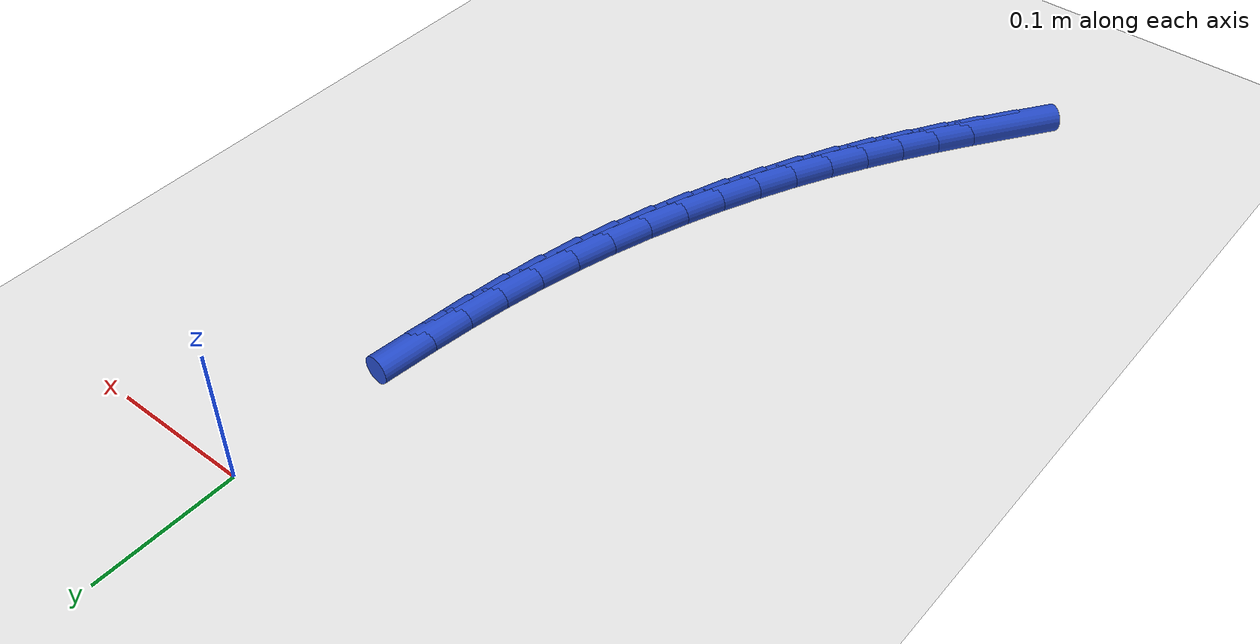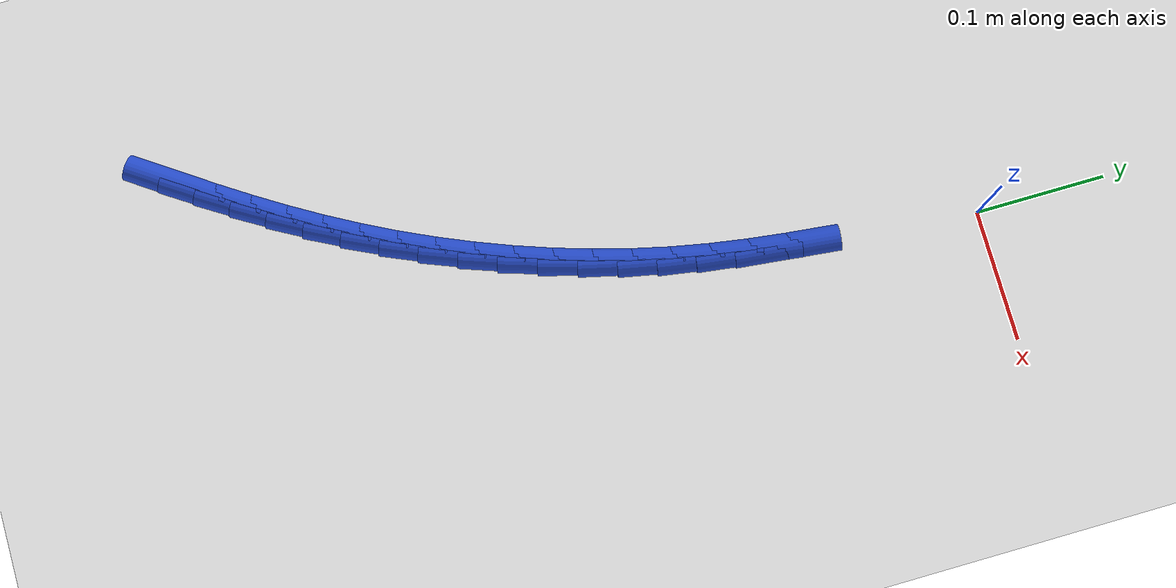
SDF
<sdf version="1.6">
 <world name="default">
  <model name="ground_plane">
   <static>1</static>
   <link name="link">
    <collision name="collision">
     <geometry><plane><normal>0 0 1</normal><size>100 100</size></plane></geometry>
     <surface><friction><ode><mu>100</mu><mu2>50</mu2></ode></friction></surface>
    </collision>
    <visual name="visual">
     <cast_shadows>0</cast_shadows>
     <geometry><plane><normal>0 0 1</normal><size>100 100</size></plane></geometry>
     <material>
      <script><uri>file://media/materials/scripts/gazebo.material</uri><name>Gazebo/WhiteGlow</name></script>
     </material>
    </visual>
   </link>
  </model>
  <model name="line">
   <link name="link_259">
    <pose>-0.18381860467356748 -0.5721646393089822 0.01 0 1.57 0.9653165247589947</pose>
    <collision name="collision">
     <geometry><cylinder><radius>0.01</radius><length>0.08</length></cylinder></geometry>
    </collision>
    <visual name="visual">
     <material>
      <script><name>Gazebo/Blue</name><uri>file://media/materials/scripts/gazebo.material</uri></script>
     </material>
     <geometry><cylinder><radius>0.01</radius><length>0.08</length></cylinder></geometry>
    </visual>
   </link>
   <link name="link_260">
    <pose>-0.16773156931763042 -0.5489245896957048 0.01 0 1.57 0.9844156708058027</pose>
    <collision name="collision">
     <geometry><cylinder><radius>0.01</radius><length>0.08</length></cylinder></geometry>
    </collision>
    <visual name="visual">
     <material>
      <script><name>Gazebo/Blue</name><uri>file://media/materials/scripts/gazebo.material</uri></script>
     </material>
     <geometry><cylinder><radius>0.01</radius><length>0.08</length></cylinder></geometry>
    </visual>
   </link>
   <link name="link_261">
    <pose>-0.15211099513407517 -0.5254111863350731 0.01 0 1.57 1.0071024502967925</pose>
    <collision name="collision">
     <geometry><cylinder><radius>0.01</radius><length>0.08</length></cylinder></geometry>
    </collision>
    <visual name="visual">
     <material>
      <script><name>Gazebo/Blue</name><uri>file://media/materials/scripts/gazebo.material</uri></script>
     </material>
     <geometry><cylinder><radius>0.01</radius><length>0.08</length></cylinder></geometry>
    </visual>
   </link>
   <link name="link_262">
    <pose>-0.13701281345431068 -0.5015257142048131 0.01 0 1.57 1.0332162777126395</pose>
    <collision name="collision">
     <geometry><cylinder><radius>0.01</radius><length>0.08</length></cylinder></geometry>
    </collision>
    <visual name="visual">
     <material>
      <script><name>Gazebo/Blue</name><uri>file://media/materials/scripts/gazebo.material</uri></script>
     </material>
     <geometry><cylinder><radius>0.01</radius><length>0.08</length></cylinder></geometry>
    </visual>
   </link>
   <link name="link_263">
    <pose>-0.12249295560974412 -0.4771694582826482 0.01 0 1.57 1.0625347964919993</pose>
    <collision name="collision">
     <geometry><cylinder><radius>0.01</radius><length>0.08</length></cylinder></geometry>
    </collision>
    <visual name="visual">
     <material>
      <script><name>Gazebo/Blue</name><uri>file://media/materials/scripts/gazebo.material</uri></script>
     </material>
     <geometry><cylinder><radius>0.01</radius><length>0.08</length></cylinder></geometry>
    </visual>
   </link>
   <link name="link_264">
    <pose>-0.10860735293178354 -0.45224370354630333 0.01 0 1.57 1.0947615956838896</pose>
    <collision name="collision">
     <geometry><cylinder><radius>0.01</radius><length>0.08</length></cylinder></geometry>
    </collision>
    <visual name="visual">
     <material>
      <script><name>Gazebo/Blue</name><uri>file://media/materials/scripts/gazebo.material</uri></script>
     </material>
     <geometry><cylinder><radius>0.01</radius><length>0.08</length></cylinder></geometry>
    </visual>
   </link>
   <link name="link_265">
    <pose>-0.09541194544264997 -0.4266504363366853 0.01 0 1.57 1.1286334582487485</pose>
    <collision name="collision">
     <geometry><cylinder><radius>0.01</radius><length>0.08</length></cylinder></geometry>
    </collision>
    <visual name="visual">
     <material>
      <script><name>Gazebo/Blue</name><uri>file://media/materials/scripts/gazebo.material</uri></script>
     </material>
     <geometry><cylinder><radius>0.01</radius><length>0.08</length></cylinder></geometry>
    </visual>
   </link>
   <link name="link_266">
    <pose>-0.08296347011604038 -0.40035595831386156 0.01 0 1.57 1.162497302419981</pose>
    <collision name="collision">
     <geometry><cylinder><radius>0.01</radius><length>0.08</length></cylinder></geometry>
    </collision>
    <visual name="visual">
     <material>
      <script><name>Gazebo/Blue</name><uri>file://media/materials/scripts/gazebo.material</uri></script>
     </material>
     <geometry><cylinder><radius>0.01</radius><length>0.08</length></cylinder></geometry>
    </visual>
   </link>
   <link name="link_267">
    <pose>-0.07132009077290405 -0.37344172010141313 0.01 0 1.57 1.1964708782040026</pose>
    <collision name="collision">
     <geometry><cylinder><radius>0.01</radius><length>0.08</length></cylinder></geometry>
    </collision>
    <visual name="visual">
     <material>
      <script><name>Gazebo/Blue</name><uri>file://media/materials/scripts/gazebo.material</uri></script>
     </material>
     <geometry><cylinder><radius>0.01</radius><length>0.08</length></cylinder></geometry>
    </visual>
   </link>
   <link name="link_268">
    <pose>-0.06054011946256617 -0.34600113460117293 0.01 0 1.57 1.2308486430326149</pose>
    <collision name="collision">
     <geometry><cylinder><radius>0.01</radius><length>0.08</length></cylinder></geometry>
    </collision>
    <visual name="visual">
     <material>
      <script><name>Gazebo/Blue</name><uri>file://media/materials/scripts/gazebo.material</uri></script>
     </material>
     <geometry><cylinder><radius>0.01</radius><length>0.08</length></cylinder></geometry>
    </visual>
   </link>
   <link name="link_269">
    <pose>-0.05068186823435192 -0.3181276147149737 0.01 0 1.57 1.2659221524938133</pose>
    <collision name="collision">
     <geometry><cylinder><radius>0.01</radius><length>0.08</length></cylinder></geometry>
    </collision>
    <visual name="visual">
     <material>
      <script><name>Gazebo/Blue</name><uri>file://media/materials/scripts/gazebo.material</uri></script>
     </material>
     <geometry><cylinder><radius>0.01</radius><length>0.08</length></cylinder></geometry>
    </visual>
   </link>
   <link name="link_270">
    <pose>-0.04180364913758624 -0.28991457334464715 0.01 0 1.57 1.3019856074205998</pose>
    <collision name="collision">
     <geometry><cylinder><radius>0.01</radius><length>0.08</length></cylinder></geometry>
    </collision>
    <visual name="visual">
     <material>
      <script><name>Gazebo/Blue</name><uri>file://media/materials/scripts/gazebo.material</uri></script>
     </material>
     <geometry><cylinder><radius>0.01</radius><length>0.08</length></cylinder></geometry>
    </visual>
   </link>
   <link name="link_271">
    <pose>-0.03396377422159491 -0.2614554233920279 0.01 0 1.57 1.3393407501409473</pose>
    <collision name="collision">
     <geometry><cylinder><radius>0.01</radius><length>0.08</length></cylinder></geometry>
    </collision>
    <visual name="visual">
     <material>
      <script><name>Gazebo/Blue</name><uri>file://media/materials/scripts/gazebo.material</uri></script>
     </material>
     <geometry><cylinder><radius>0.01</radius><length>0.08</length></cylinder></geometry>
    </visual>
   </link>
   <link name="link_272">
    <pose>-0.027220555535702823 -0.2328435777589478 0.01 0 1.57 1.3779483706855722</pose>
    <collision name="collision">
     <geometry><cylinder><radius>0.01</radius><length>0.08</length></cylinder></geometry>
    </collision>
    <visual name="visual">
     <material>
      <script><name>Gazebo/Blue</name><uri>file://media/materials/scripts/gazebo.material</uri></script>
     </material>
     <geometry><cylinder><radius>0.01</radius><length>0.08</length></cylinder></geometry>
    </visual>
   </link>
   <link name="link_273">
    <pose>-0.021620699364282257 -0.20416677257172458 0.01 0 1.57 1.4134173027585133</pose>
    <collision name="collision">
     <geometry><cylinder><radius>0.01</radius><length>0.08</length></cylinder></geometry>
    </collision>
    <visual name="visual">
     <material>
      <script><name>Gazebo/Blue</name><uri>file://media/materials/scripts/gazebo.material</uri></script>
     </material>
     <geometry><cylinder><radius>0.01</radius><length>0.08</length></cylinder></geometry>
    </visual>
   </link>
   <link name="link_274">
    <pose>-0.01706199342870465 -0.17543990280784938 0.01 0 1.57 1.4422956674943832</pose>
    <collision name="collision">
     <geometry><cylinder><radius>0.01</radius><length>0.08</length></cylinder></geometry>
    </collision>
    <visual name="visual">
     <material>
      <script><name>Gazebo/Blue</name><uri>file://media/materials/scripts/gazebo.material</uri></script>
     </material>
     <geometry><cylinder><radius>0.01</radius><length>0.08</length></cylinder></geometry>
    </visual>
   </link>
   <link name="link_275">
    <pose>-0.01333905345394425 -0.14662739850214382 0.01 0 1.57 1.4642493339407177</pose>
    <collision name="collision">
     <geometry><cylinder><radius>0.01</radius><length>0.08</length></cylinder></geometry>
    </collision>
    <visual name="visual">
     <material>
      <script><name>Gazebo/Blue</name><uri>file://media/materials/scripts/gazebo.material</uri></script>
     </material>
     <geometry><cylinder><radius>0.01</radius><length>0.08</length></cylinder></geometry>
    </visual>
   </link>
  </model>
 </world>
</sdf>
